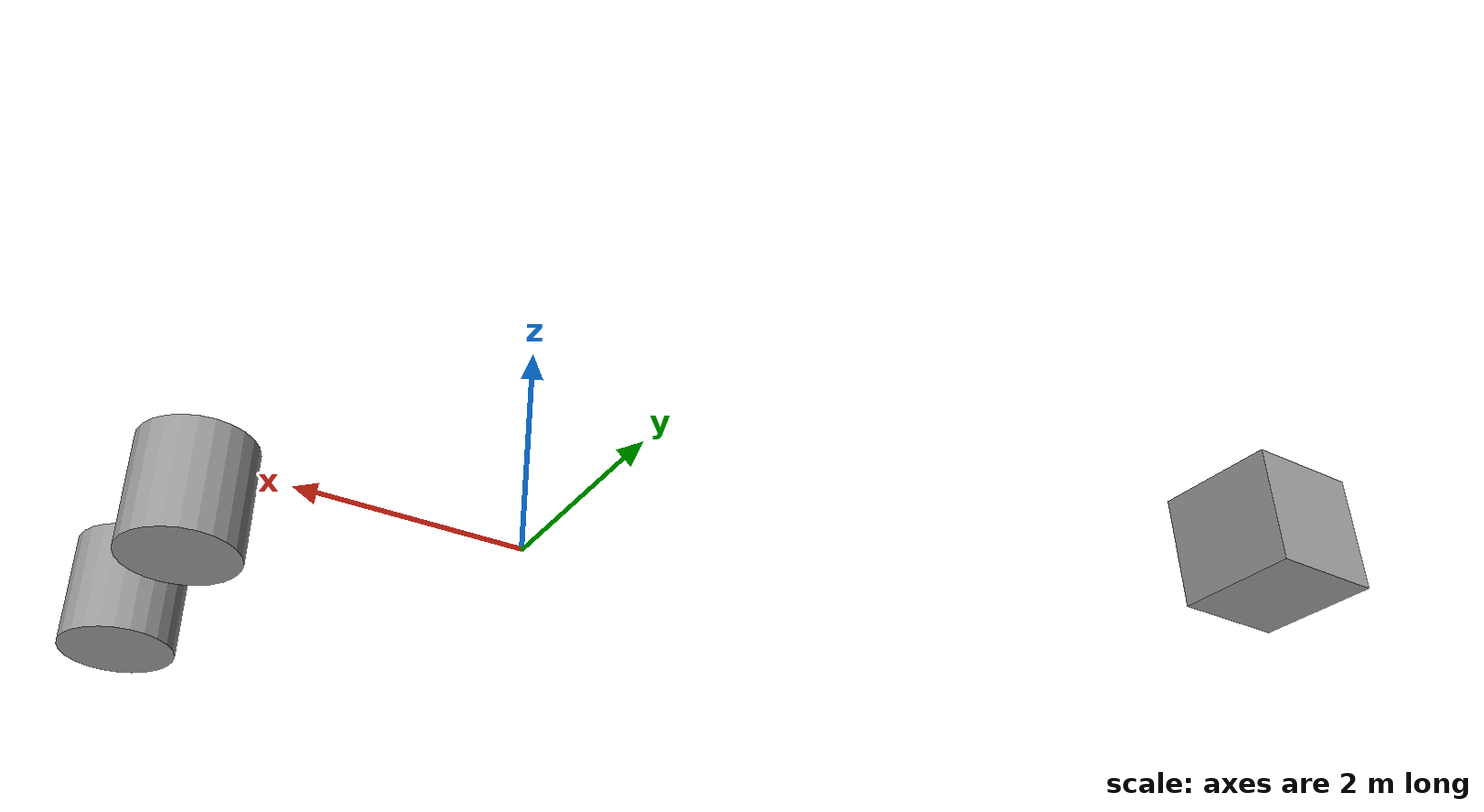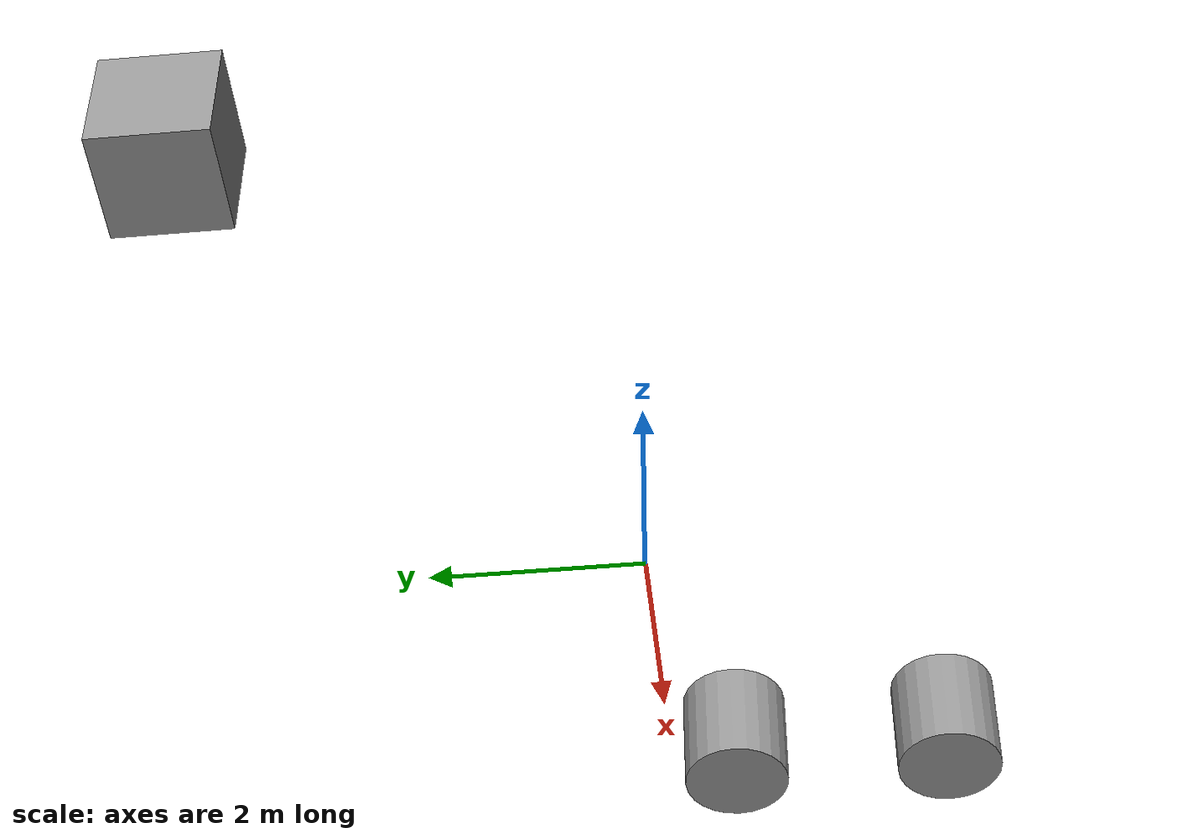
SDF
<?xml version='1.0'?>
<sdf version='1.6'>
  <model name='TestModel'>
    <link name='link_0'>
      <inertial>
        <mass>1</mass>
        <inertia>
          <ixx>0.166667</ixx>
          <ixy>0</ixy>
          <ixz>0</ixz>
          <iyy>0.166667</iyy>
          <iyz>0</iyz>
          <izz>0.166667</izz>
        </inertia>
      </inertial>
      <pose frame=''>-5.24672 3.34142 0 0 -0 0</pose>
      <visual name='visual'>
        <pose frame=''>0 0 0 0 -0 0</pose>
        <geometry>
          <box>
            <size>1 1 1</size>
          </box>
        </geometry>
        <material>
          <lighting>1</lighting>
          <script>
            <uri>file://media/materials/scripts/gazebo.material</uri>
            <name>Gazebo/Grey</name>
          </script>
          <shader type='pixel'/>
          <emissive>0 0 0 1</emissive>
        </material>
        <transparency>0</transparency>
        <cast_shadows>1</cast_shadows>
      </visual>
      <collision name='collision'>
        <laser_retro>0</laser_retro>
        <max_contacts>10</max_contacts>
        <pose frame=''>0 0 0 0 -0 0</pose>
        <geometry>
          <box>
            <size>1 1 1</size>
          </box>
        </geometry>
        <surface>
          <friction>
            <ode>
              <mu>1</mu>
              <mu2>1</mu2>
              <fdir1>0 0 0</fdir1>
              <slip1>0</slip1>
              <slip2>0</slip2>
            </ode>
            <torsional>
              <coefficient>1</coefficient>
              <patch_radius>0</patch_radius>
              <surface_radius>0</surface_radius>
              <use_patch_radius>1</use_patch_radius>
              <ode>
                <slip>0</slip>
              </ode>
            </torsional>
          </friction>
          <bounce>
            <restitution_coefficient>0</restitution_coefficient>
            <threshold>1e+06</threshold>
          </bounce>
          <contact>
            <collide_without_contact>0</collide_without_contact>
            <collide_without_contact_bitmask>1</collide_without_contact_bitmask>
            <collide_bitmask>1</collide_bitmask>
            <ode>
              <soft_cfm>0</soft_cfm>
              <soft_erp>0.2</soft_erp>
              <kp>1e+13</kp>
              <kd>1</kd>
              <max_vel>0.01</max_vel>
              <min_depth>0</min_depth>
            </ode>
            <bullet>
              <split_impulse>1</split_impulse>
              <split_impulse_penetration_threshold>-0.01</split_impulse_penetration_threshold>
              <soft_cfm>0</soft_cfm>
              <soft_erp>0.2</soft_erp>
              <kp>1e+13</kp>
              <kd>1</kd>
            </bullet>
          </contact>
        </surface>
      </collision>
    </link>
    <link name='link_1'>
      <inertial>
        <mass>1</mass>
        <inertia>
          <ixx>0.145833</ixx>
          <ixy>0</ixy>
          <ixz>0</ixz>
          <iyy>0.145833</iyy>
          <iyz>0</iyz>
          <izz>0.125</izz>
        </inertia>
      </inertial>
      <pose frame=''>2.61288 -2.69748 0 0 -0 0</pose>
      <visual name='visual'>
        <pose frame=''>0 0 0 0 -0 0</pose>
        <geometry>
          <cylinder>
            <radius>0.5</radius>
            <length>1</length>
          </cylinder>
        </geometry>
        <material>
          <lighting>1</lighting>
          <script>
            <uri>file://media/materials/scripts/gazebo.material</uri>
            <name>Gazebo/Grey</name>
          </script>
          <shader type='pixel'/>
          <emissive>0 0 0 1</emissive>
        </material>
        <transparency>0</transparency>
        <cast_shadows>1</cast_shadows>
      </visual>
      <collision name='collision'>
        <laser_retro>0</laser_retro>
        <max_contacts>10</max_contacts>
        <pose frame=''>0 0 0 0 -0 0</pose>
        <geometry>
          <cylinder>
            <radius>0.5</radius>
            <length>1</length>
          </cylinder>
        </geometry>
        <surface>
          <friction>
            <ode>
              <mu>1</mu>
              <mu2>1</mu2>
              <fdir1>0 0 0</fdir1>
              <slip1>0</slip1>
              <slip2>0</slip2>
            </ode>
            <torsional>
              <coefficient>1</coefficient>
              <patch_radius>0</patch_radius>
              <surface_radius>0</surface_radius>
              <use_patch_radius>1</use_patch_radius>
              <ode>
                <slip>0</slip>
              </ode>
            </torsional>
          </friction>
          <bounce>
            <restitution_coefficient>0</restitution_coefficient>
            <threshold>1e+06</threshold>
          </bounce>
          <contact>
            <collide_without_contact>0</collide_without_contact>
            <collide_without_contact_bitmask>1</collide_without_contact_bitmask>
            <collide_bitmask>1</collide_bitmask>
            <ode>
              <soft_cfm>0</soft_cfm>
              <soft_erp>0.2</soft_erp>
              <kp>1e+13</kp>
              <kd>1</kd>
              <max_vel>0.01</max_vel>
              <min_depth>0</min_depth>
            </ode>
            <bullet>
              <split_impulse>1</split_impulse>
              <split_impulse_penetration_threshold>-0.01</split_impulse_penetration_threshold>
              <soft_cfm>0</soft_cfm>
              <soft_erp>0.2</soft_erp>
              <kp>1e+13</kp>
              <kd>1</kd>
            </bullet>
          </contact>
        </surface>
      </collision>
    </link>
    <link name='link_2'>
      <inertial>
        <mass>1</mass>
        <inertia>
          <ixx>0.145833</ixx>
          <ixy>0</ixy>
          <ixz>0</ixz>
          <iyy>0.145833</iyy>
          <iyz>0</iyz>
          <izz>0.125</izz>
        </inertia>
      </inertial>
      <pose frame=''>2.63385 -0.643945 0 0 -0 0</pose>
      <visual name='visual'>
        <pose frame=''>0 0 0 0 -0 0</pose>
        <geometry>
          <cylinder>
            <radius>0.5</radius>
            <length>1</length>
          </cylinder>
        </geometry>
        <material>
          <lighting>1</lighting>
          <script>
            <uri>file://media/materials/scripts/gazebo.material</uri>
            <name>Gazebo/Grey</name>
          </script>
          <shader type='pixel'/>
          <emissive>0 0 0 1</emissive>
        </material>
        <transparency>0</transparency>
        <cast_shadows>1</cast_shadows>
      </visual>
      <collision name='collision'>
        <laser_retro>0</laser_retro>
        <max_contacts>10</max_contacts>
        <pose frame=''>0 0 0 0 -0 0</pose>
        <geometry>
          <cylinder>
            <radius>0.5</radius>
            <length>1</length>
          </cylinder>
        </geometry>
        <surface>
          <friction>
            <ode>
              <mu>1</mu>
              <mu2>1</mu2>
              <fdir1>0 0 0</fdir1>
              <slip1>0</slip1>
              <slip2>0</slip2>
            </ode>
            <torsional>
              <coefficient>1</coefficient>
              <patch_radius>0</patch_radius>
              <surface_radius>0</surface_radius>
              <use_patch_radius>1</use_patch_radius>
              <ode>
                <slip>0</slip>
              </ode>
            </torsional>
          </friction>
          <bounce>
            <restitution_coefficient>0</restitution_coefficient>
            <threshold>1e+06</threshold>
          </bounce>
          <contact>
            <collide_without_contact>0</collide_without_contact>
            <collide_without_contact_bitmask>1</collide_without_contact_bitmask>
            <collide_bitmask>1</collide_bitmask>
            <ode>
              <soft_cfm>0</soft_cfm>
              <soft_erp>0.2</soft_erp>
              <kp>1e+13</kp>
              <kd>1</kd>
              <max_vel>0.01</max_vel>
              <min_depth>0</min_depth>
            </ode>
            <bullet>
              <split_impulse>1</split_impulse>
              <split_impulse_penetration_threshold>-0.01</split_impulse_penetration_threshold>
              <soft_cfm>0</soft_cfm>
              <soft_erp>0.2</soft_erp>
              <kp>1e+13</kp>
              <kd>1</kd>
            </bullet>
          </contact>
        </surface>
      </collision>
    </link>
    <joint name='link_0_JOINT_1' type='revolute'>
      <parent>link_0</parent>
      <child>link_2</child>
      <pose frame=''>0 0 0 0 -0 0</pose>
      <axis>
        <xyz>1 0 0</xyz>
        <use_parent_model_frame>0</use_parent_model_frame>
        <limit>
          <lower>-1.79769e+308</lower>
          <upper>1.79769e+308</upper>
          <effort>-1</effort>
          <velocity>-1</velocity>
        </limit>
        <dynamics>
          <spring_reference>0</spring_reference>
          <spring_stiffness>0</spring_stiffness>
          <damping>0</damping>
        </dynamics>
      </axis>
      <physics>
        <ode>
          <limit>
            <cfm>0</cfm>
            <erp>0.2</erp>
          </limit>
          <suspension>
            <cfm>0</cfm>
            <erp>0.2</erp>
          </suspension>
        </ode>
      </physics>
    </joint>
    <joint name='link_1_JOINT_0' type='revolute'>
      <parent>link_1</parent>
      <child>link_0</child>
      <pose frame=''>0 0 0 0 -0 0</pose>
      <axis>
        <xyz>1 0 0</xyz>
        <use_parent_model_frame>0</use_parent_model_frame>
        <limit>
          <lower>-1.79769e+308</lower>
          <upper>1.79769e+308</upper>
          <effort>-1</effort>
          <velocity>-1</velocity>
        </limit>
        <dynamics>
          <spring_reference>0</spring_reference>
          <spring_stiffness>0</spring_stiffness>
          <damping>0</damping>
        </dynamics>
      </axis>
      <physics>
        <ode>
          <limit>
            <cfm>0</cfm>
            <erp>0.2</erp>
          </limit>
          <suspension>
            <cfm>0</cfm>
            <erp>0.2</erp>
          </suspension>
        </ode>
      </physics>
    </joint>
    <static>0</static>
    <allow_auto_disable>1</allow_auto_disable>
  </model>
</sdf>
